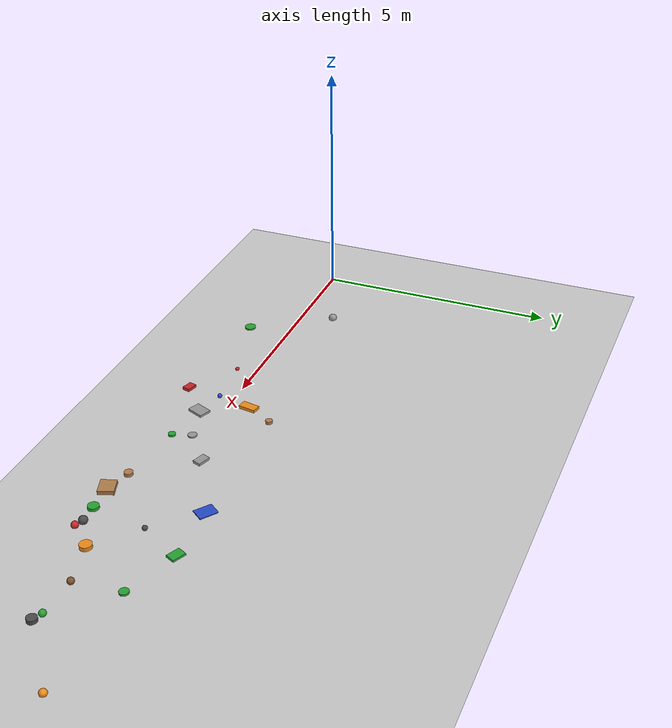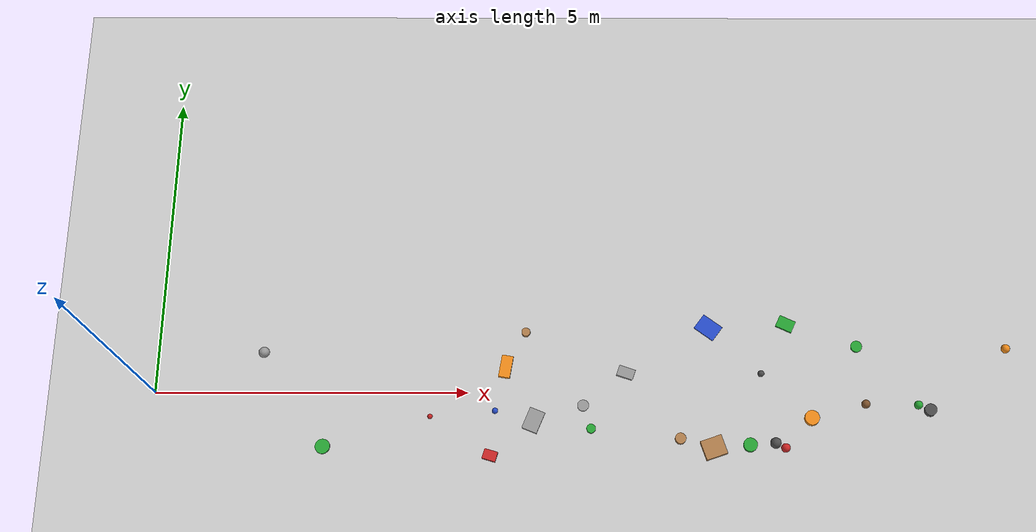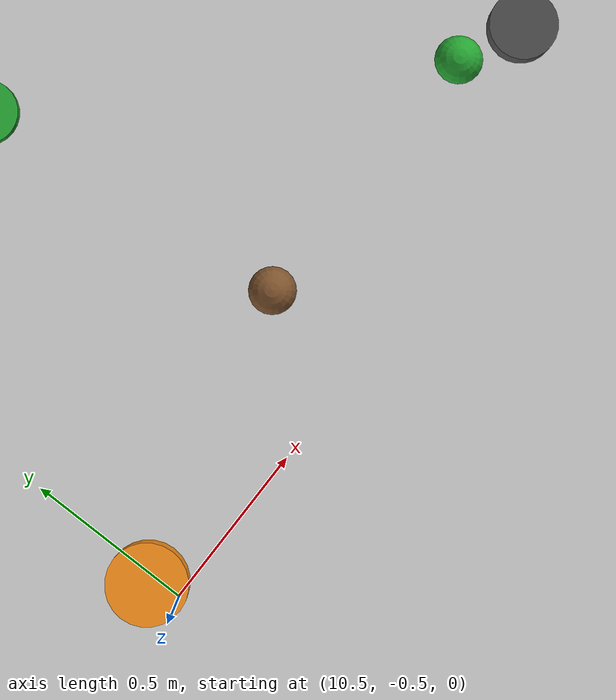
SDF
<?xml version="1.0" ?>
<!-- 由 omni_world.py 自动生成: scene=random seed=3 -->
<sdf version="1.5">
  <world name="random">
    <physics type="ode">
      <type>world</type>
      <max_step_size>0.001</max_step_size>
      <real_time_update_rate>1000</real_time_update_rate>
      <iters>500</iters>
    </physics>
    <include><uri>model://sun</uri></include>
    <include><uri>model://ground_plane</uri></include>
    <model name="r_box_0">
      <static>true</static>
      <pose>8.908 -0.887 0.042 0.0000 0.0000 1.9025</pose>
      <link name="link">
        <collision name="collision">
          <geometry><box><size>0.316 0.353 0.084</size></box></geometry>
          <surface><friction><ode><mu>1.0</mu><mu2>1.0</mu2></ode></friction></surface>
        </collision>
        <visual name="visual">
          <geometry><box><size>0.316 0.353 0.084</size></box></geometry>
          <material><script><uri>file://media/materials/scripts/gazebo.material</uri>
            <name>Gazebo/Wood</name></script></material>
        </visual>
      </link>
    </model>
    <model name="r_cyl_1">
      <static>true</static>
      <pose>8.385 -0.740 0.035 0 0 0</pose>
      <link name="link">
        <collision name="collision">
          <geometry><cylinder><radius>0.088</radius><length>0.070</length></cylinder></geometry>
          <surface><friction><ode><mu>1.0</mu><mu2>1.0</mu2></ode></friction></surface>
        </collision>
        <visual name="visual">
          <geometry><cylinder><radius>0.088</radius><length>0.070</length></cylinder></geometry>
          <material><script><uri>file://media/materials/scripts/gazebo.material</uri>
            <name>Gazebo/Wood</name></script></material>
        </visual>
      </link>
    </model>
    <model name="r_cyl_2">
      <static>true</static>
      <pose>9.488 -0.839 0.032 0 0 0</pose>
      <link name="link">
        <collision name="collision">
          <geometry><cylinder><radius>0.111</radius><length>0.064</length></cylinder></geometry>
          <surface><friction><ode><mu>1.0</mu><mu2>1.0</mu2></ode></friction></surface>
        </collision>
        <visual name="visual">
          <geometry><cylinder><radius>0.111</radius><length>0.064</length></cylinder></geometry>
          <material><script><uri>file://media/materials/scripts/gazebo.material</uri>
            <name>Gazebo/Green</name></script></material>
        </visual>
      </link>
    </model>
    <model name="r_sph_3">
      <static>true</static>
      <pose>1.689 0.665 0.016 0 0 0</pose>
      <link name="link">
        <collision name="collision">
          <geometry><sphere><radius>0.088</radius></sphere></geometry>
          <surface><friction><ode><mu>1.0</mu><mu2>1.0</mu2></ode></friction></surface>
        </collision>
        <visual name="visual">
          <geometry><sphere><radius>0.088</radius></sphere></geometry>
          <material><script><uri>file://media/materials/scripts/gazebo.material</uri>
            <name>Gazebo/Grey</name></script></material>
        </visual>
      </link>
    </model>
    <model name="r_cyl_4">
      <static>true</static>
      <pose>11.251 0.777 0.019 0 0 0</pose>
      <link name="link">
        <collision name="collision">
          <geometry><cylinder><radius>0.092</radius><length>0.039</length></cylinder></geometry>
          <surface><friction><ode><mu>1.0</mu><mu2>1.0</mu2></ode></friction></surface>
        </collision>
        <visual name="visual">
          <geometry><cylinder><radius>0.092</radius><length>0.039</length></cylinder></geometry>
          <material><script><uri>file://media/materials/scripts/gazebo.material</uri>
            <name>Gazebo/Green</name></script></material>
        </visual>
      </link>
    </model>
    <model name="r_sph_5">
      <static>true</static>
      <pose>11.351 -0.175 0.035 0 0 0</pose>
      <link name="link">
        <collision name="collision">
          <geometry><sphere><radius>0.069</radius></sphere></geometry>
          <surface><friction><ode><mu>1.0</mu><mu2>1.0</mu2></ode></friction></surface>
        </collision>
        <visual name="visual">
          <geometry><sphere><radius>0.069</radius></sphere></geometry>
          <material><script><uri>file://media/materials/scripts/gazebo.material</uri>
            <name>Gazebo/Brown</name></script></material>
        </visual>
      </link>
    </model>
    <model name="r_cyl_6">
      <static>true</static>
      <pose>2.718 -0.874 0.018 0 0 0</pose>
      <link name="link">
        <collision name="collision">
          <geometry><cylinder><radius>0.118</radius><length>0.035</length></cylinder></geometry>
          <surface><friction><ode><mu>1.0</mu><mu2>1.0</mu2></ode></friction></surface>
        </collision>
        <visual name="visual">
          <geometry><cylinder><radius>0.118</radius><length>0.035</length></cylinder></geometry>
          <material><script><uri>file://media/materials/scripts/gazebo.material</uri>
            <name>Gazebo/Green</name></script></material>
        </visual>
      </link>
    </model>
    <model name="r_sph_7">
      <static>true</static>
      <pose>12.190 -0.189 0.039 0 0 0</pose>
      <link name="link">
        <collision name="collision">
          <geometry><sphere><radius>0.069</radius></sphere></geometry>
          <surface><friction><ode><mu>1.0</mu><mu2>1.0</mu2></ode></friction></surface>
        </collision>
        <visual name="visual">
          <geometry><sphere><radius>0.069</radius></sphere></geometry>
          <material><script><uri>file://media/materials/scripts/gazebo.material</uri>
            <name>Gazebo/Green</name></script></material>
        </visual>
      </link>
    </model>
    <model name="r_sph_8">
      <static>true</static>
      <pose>4.405 -0.392 0.042 0 0 0</pose>
      <link name="link">
        <collision name="collision">
          <geometry><sphere><radius>0.041</radius></sphere></geometry>
          <surface><friction><ode><mu>1.0</mu><mu2>1.0</mu2></ode></friction></surface>
        </collision>
        <visual name="visual">
          <geometry><sphere><radius>0.041</radius></sphere></geometry>
          <material><script><uri>file://media/materials/scripts/gazebo.material</uri>
            <name>Gazebo/Red</name></script></material>
        </visual>
      </link>
    </model>
    <model name="r_sph_9">
      <static>true</static>
      <pose>9.891 -0.809 0.040 0 0 0</pose>
      <link name="link">
        <collision name="collision">
          <geometry><sphere><radius>0.088</radius></sphere></geometry>
          <surface><friction><ode><mu>1.0</mu><mu2>1.0</mu2></ode></friction></surface>
        </collision>
        <visual name="visual">
          <geometry><sphere><radius>0.088</radius></sphere></geometry>
          <material><script><uri>file://media/materials/scripts/gazebo.material</uri>
            <name>Gazebo/DarkGrey</name></script></material>
        </visual>
      </link>
    </model>
    <model name="r_sph_10">
      <static>true</static>
      <pose>9.694 0.319 0.045 0 0 0</pose>
      <link name="link">
        <collision name="collision">
          <geometry><sphere><radius>0.053</radius></sphere></geometry>
          <surface><friction><ode><mu>1.0</mu><mu2>1.0</mu2></ode></friction></surface>
        </collision>
        <visual name="visual">
          <geometry><sphere><radius>0.053</radius></sphere></geometry>
          <material><script><uri>file://media/materials/scripts/gazebo.material</uri>
            <name>Gazebo/DarkGrey</name></script></material>
        </visual>
      </link>
    </model>
    <model name="r_box_11">
      <static>true</static>
      <pose>7.525 0.333 0.027 0.0000 0.0000 2.8183</pose>
      <link name="link">
        <collision name="collision">
          <geometry><box><size>0.270 0.173 0.054</size></box></geometry>
          <surface><friction><ode><mu>1.0</mu><mu2>1.0</mu2></ode></friction></surface>
        </collision>
        <visual name="visual">
          <geometry><box><size>0.270 0.173 0.054</size></box></geometry>
          <material><script><uri>file://media/materials/scripts/gazebo.material</uri>
            <name>Gazebo/Grey</name></script></material>
        </visual>
      </link>
    </model>
    <model name="r_cyl_12">
      <static>true</static>
      <pose>6.839 -0.204 0.014 0 0 0</pose>
      <link name="link">
        <collision name="collision">
          <geometry><cylinder><radius>0.092</radius><length>0.028</length></cylinder></geometry>
          <surface><friction><ode><mu>1.0</mu><mu2>1.0</mu2></ode></friction></surface>
        </collision>
        <visual name="visual">
          <geometry><cylinder><radius>0.092</radius><length>0.028</length></cylinder></geometry>
          <material><script><uri>file://media/materials/scripts/gazebo.material</uri>
            <name>Gazebo/Grey</name></script></material>
        </visual>
      </link>
    </model>
    <model name="r_cyl_13">
      <static>true</static>
      <pose>10.481 -0.406 0.041 0 0 0</pose>
      <link name="link">
        <collision name="collision">
          <geometry><cylinder><radius>0.119</radius><length>0.082</length></cylinder></geometry>
          <surface><friction><ode><mu>1.0</mu><mu2>1.0</mu2></ode></friction></surface>
        </collision>
        <visual name="visual">
          <geometry><cylinder><radius>0.119</radius><length>0.082</length></cylinder></geometry>
          <material><script><uri>file://media/materials/scripts/gazebo.material</uri>
            <name>Gazebo/Orange</name></script></material>
        </visual>
      </link>
    </model>
    <model name="r_box_14">
      <static>true</static>
      <pose>5.371 -1.015 0.031 0.0000 0.0000 1.2816</pose>
      <link name="link">
        <collision name="collision">
          <geometry><box><size>0.161 0.219 0.062</size></box></geometry>
          <surface><friction><ode><mu>1.0</mu><mu2>1.0</mu2></ode></friction></surface>
        </collision>
        <visual name="visual">
          <geometry><box><size>0.161 0.219 0.062</size></box></geometry>
          <material><script><uri>file://media/materials/scripts/gazebo.material</uri>
            <name>Gazebo/Red</name></script></material>
        </visual>
      </link>
    </model>
    <model name="r_box_15">
      <static>true</static>
      <pose>10.122 1.152 0.022 0.0000 0.0000 2.7071</pose>
      <link name="link">
        <collision name="collision">
          <geometry><box><size>0.276 0.198 0.044</size></box></geometry>
          <surface><friction><ode><mu>1.0</mu><mu2>1.0</mu2></ode></friction></surface>
        </collision>
        <visual name="visual">
          <geometry><box><size>0.276 0.198 0.044</size></box></geometry>
          <material><script><uri>file://media/materials/scripts/gazebo.material</uri>
            <name>Gazebo/Green</name></script></material>
        </visual>
      </link>
    </model>
    <model name="r_cyl_16">
      <static>true</static>
      <pose>12.374 -0.273 0.040 0 0 0</pose>
      <link name="link">
        <collision name="collision">
          <geometry><cylinder><radius>0.098</radius><length>0.081</length></cylinder></geometry>
          <surface><friction><ode><mu>1.0</mu><mu2>1.0</mu2></ode></friction></surface>
        </collision>
        <visual name="visual">
          <geometry><cylinder><radius>0.098</radius><length>0.081</length></cylinder></geometry>
          <material><script><uri>file://media/materials/scripts/gazebo.material</uri>
            <name>Gazebo/DarkGrey</name></script></material>
        </visual>
      </link>
    </model>
    <model name="r_sph_17">
      <static>true</static>
      <pose>13.661 0.748 0.019 0 0 0</pose>
      <link name="link">
        <collision name="collision">
          <geometry><sphere><radius>0.072</radius></sphere></geometry>
          <surface><friction><ode><mu>1.0</mu><mu2>1.0</mu2></ode></friction></surface>
        </collision>
        <visual name="visual">
          <geometry><sphere><radius>0.072</radius></sphere></geometry>
          <material><script><uri>file://media/materials/scripts/gazebo.material</uri>
            <name>Gazebo/Orange</name></script></material>
        </visual>
      </link>
    </model>
    <model name="r_cyl_18">
      <static>true</static>
      <pose>6.968 -0.580 0.021 0 0 0</pose>
      <link name="link">
        <collision name="collision">
          <geometry><cylinder><radius>0.074</radius><length>0.041</length></cylinder></geometry>
          <surface><friction><ode><mu>1.0</mu><mu2>1.0</mu2></ode></friction></surface>
        </collision>
        <visual name="visual">
          <geometry><cylinder><radius>0.074</radius><length>0.041</length></cylinder></geometry>
          <material><script><uri>file://media/materials/scripts/gazebo.material</uri>
            <name>Gazebo/Green</name></script></material>
        </visual>
      </link>
    </model>
    <model name="r_sph_19">
      <static>true</static>
      <pose>5.436 -0.296 0.031 0 0 0</pose>
      <link name="link">
        <collision name="collision">
          <geometry><sphere><radius>0.047</radius></sphere></geometry>
          <surface><friction><ode><mu>1.0</mu><mu2>1.0</mu2></ode></friction></surface>
        </collision>
        <visual name="visual">
          <geometry><sphere><radius>0.047</radius></sphere></geometry>
          <material><script><uri>file://media/materials/scripts/gazebo.material</uri>
            <name>Gazebo/Blue</name></script></material>
        </visual>
      </link>
    </model>
    <model name="r_cyl_20">
      <static>true</static>
      <pose>5.911 1.002 0.031 0 0 0</pose>
      <link name="link">
        <collision name="collision">
          <geometry><cylinder><radius>0.070</radius><length>0.063</length></cylinder></geometry>
          <surface><friction><ode><mu>1.0</mu><mu2>1.0</mu2></ode></friction></surface>
        </collision>
        <visual name="visual">
          <geometry><cylinder><radius>0.070</radius><length>0.063</length></cylinder></geometry>
          <material><script><uri>file://media/materials/scripts/gazebo.material</uri>
            <name>Gazebo/Wood</name></script></material>
        </visual>
      </link>
    </model>
    <model name="r_box_21">
      <static>true</static>
      <pose>8.867 1.092 0.011 0.0000 0.0000 0.9382</pose>
      <link name="link">
        <collision name="collision">
          <geometry><box><size>0.279 0.370 0.021</size></box></geometry>
          <surface><friction><ode><mu>1.0</mu><mu2>1.0</mu2></ode></friction></surface>
        </collision>
        <visual name="visual">
          <geometry><box><size>0.279 0.370 0.021</size></box></geometry>
          <material><script><uri>file://media/materials/scripts/gazebo.material</uri>
            <name>Gazebo/Blue</name></script></material>
        </visual>
      </link>
    </model>
    <model name="r_box_22">
      <static>true</static>
      <pose>6.049 -0.450 0.023 0.0000 0.0000 1.1849</pose>
      <link name="link">
        <collision name="collision">
          <geometry><box><size>0.358 0.255 0.046</size></box></geometry>
          <surface><friction><ode><mu>1.0</mu><mu2>1.0</mu2></ode></friction></surface>
        </collision>
        <visual name="visual">
          <geometry><box><size>0.358 0.255 0.046</size></box></geometry>
          <material><script><uri>file://media/materials/scripts/gazebo.material</uri>
            <name>Gazebo/Grey</name></script></material>
        </visual>
      </link>
    </model>
    <model name="r_sph_23">
      <static>true</static>
      <pose>10.047 -0.885 0.028 0 0 0</pose>
      <link name="link">
        <collision name="collision">
          <geometry><sphere><radius>0.073</radius></sphere></geometry>
          <surface><friction><ode><mu>1.0</mu><mu2>1.0</mu2></ode></friction></surface>
        </collision>
        <visual name="visual">
          <geometry><sphere><radius>0.073</radius></sphere></geometry>
          <material><script><uri>file://media/materials/scripts/gazebo.material</uri>
            <name>Gazebo/Red</name></script></material>
        </visual>
      </link>
    </model>
    <model name="r_box_24">
      <static>true</static>
      <pose>5.597 0.427 0.033 0.0000 0.0000 2.9818</pose>
      <link name="link">
        <collision name="collision">
          <geometry><box><size>0.184 0.360 0.065</size></box></geometry>
          <surface><friction><ode><mu>1.0</mu><mu2>1.0</mu2></ode></friction></surface>
        </collision>
        <visual name="visual">
          <geometry><box><size>0.184 0.360 0.065</size></box></geometry>
          <material><script><uri>file://media/materials/scripts/gazebo.material</uri>
            <name>Gazebo/Orange</name></script></material>
        </visual>
      </link>
    </model>

  </world>
</sdf>
